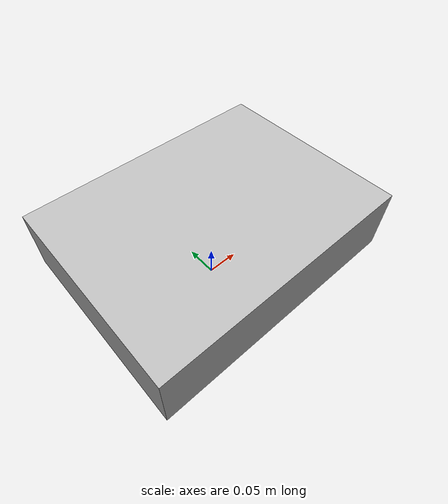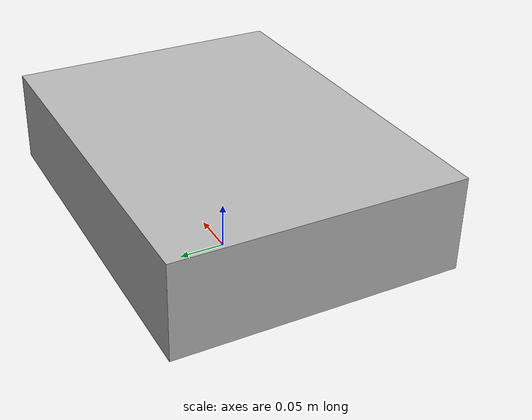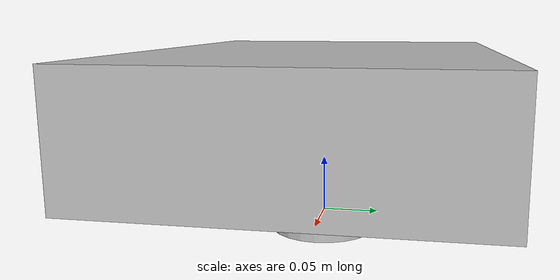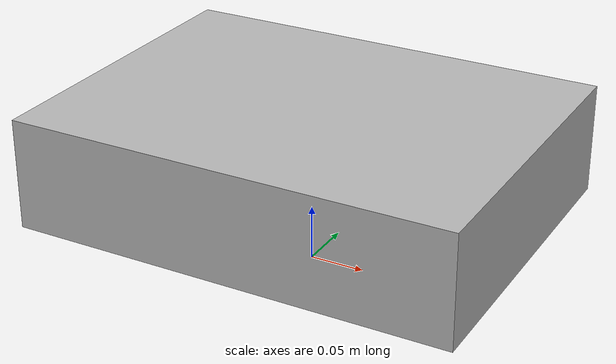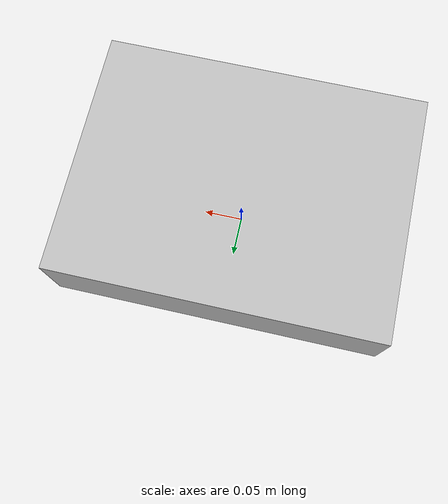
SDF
<?xml version="1.0"?>
<sdf version="1.8">
    <model name="tfr_bot">
        <link name="base_link">
            <pose>0 0 0.1 0 0 0</pose>
            <inertial>
                <mass>5.0</mass>
            </inertial>
            <collision name="base_col">
                <geometry>
                    <box>
                        <size>0.4 0.3 0.1</size>
                    </box>
                </geometry>
            </collision>
            <visual name="base_vis">
                <geometry>
                    <box>
                        <size>0.4 0.3 0.1</size>
                    </box>
                </geometry>
            </visual>
        </link>

        <link name="wheel_left">
            <inertial>
                <mass>0.5</mass>
            </inertial>
            <collision name="wl_col">
                <geometry>
                    <cylinder>
                        <radius>0.05</radius>
                        <length>0.03</length>
                    </cylinder>
                </geometry>
            </collision>
            <visual name="wl_vis">
                <geometry>
                    <cylinder>
                        <radius>0.05</radius>
                        <length>0.03</length>
                    </cylinder>
                </geometry>
            </visual>
        </link>
        <joint name="left_wheel_joint" type="revolute">
            <parent>base_link</parent>
            <child>wheel_left</child>
            <pose>0 0.15 0.05 0 1.5708 0</pose>
            <axis>
                <xyz>0 1 0</xyz>
                <limit>
                    <lower>-1e16</lower>
                    <upper>1e16</upper>
                </limit>
            </axis>
        </joint>

        <link name="wheel_right">
            <inertial>
                <mass>0.5</mass>
            </inertial>
            <collision name="wr_col">
                <geometry>
                    <cylinder>
                        <radius>0.05</radius>
                        <length>0.03</length>
                    </cylinder>
                </geometry>
            </collision>
            <visual name="wr_vis">
                <geometry>
                    <cylinder>
                        <radius>0.05</radius>
                        <length>0.03</length>
                    </cylinder>
                </geometry>
            </visual>
        </link>
        <joint name="right_wheel_joint" type="revolute">
            <parent>base_link</parent>
            <child>wheel_right</child>
            <pose>0 -0.15 0.05 0 1.5708 0</pose>
            <axis>
                <xyz>0 1 0</xyz>
                <limit>
                    <lower>-1e16</lower>
                    <upper>1e16</upper>
                </limit>
            </axis>
        </joint>

        <plugin
            name="gz::sim::systems::DiffDrive"
            filename="gz-sim-diff-drive-system">
            <left_joint>left_wheel_joint</left_joint>
            <right_joint>right_wheel_joint</right_joint>
            <wheel_separation>0.30</wheel_separation>
            <wheel_radius>0.05</wheel_radius>
            <odom_frame>odom</odom_frame>
            <robot_base_frame>base_link</robot_base_frame>
            <topic>/cmd_vel</topic>
            <max_linear_acceleration>5.0</max_linear_acceleration>
            <max_angular_acceleration>5.0</max_angular_acceleration>
        </plugin>
    </model>
</sdf>
